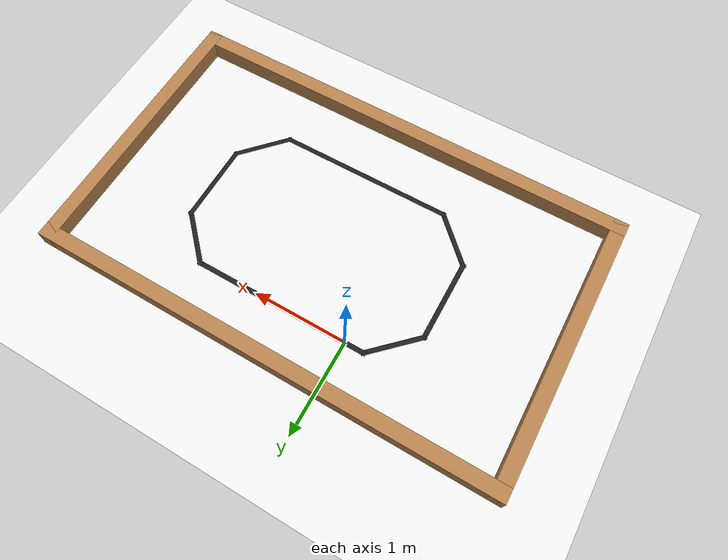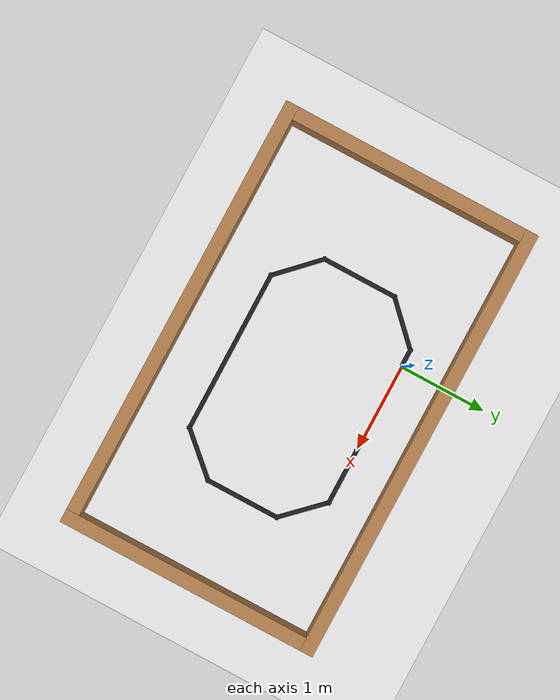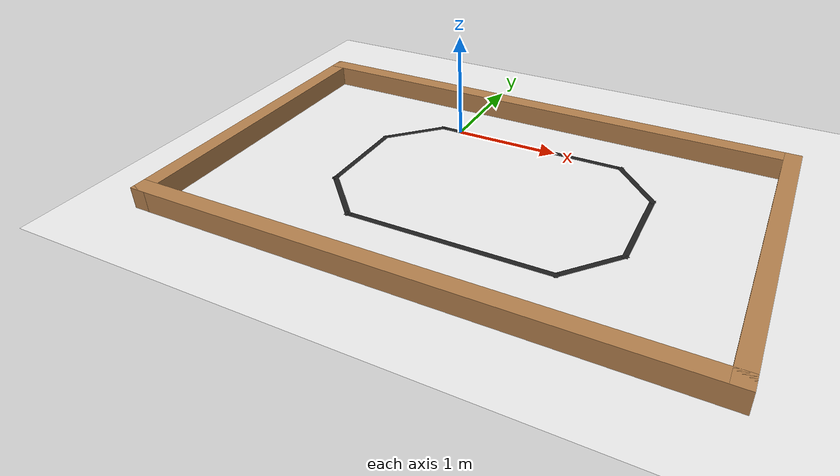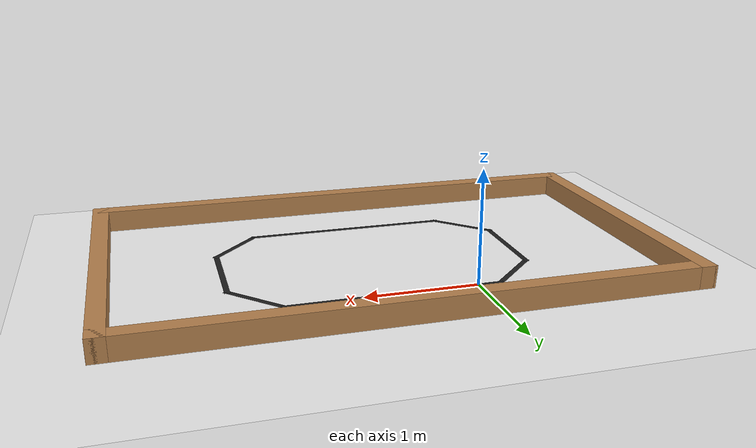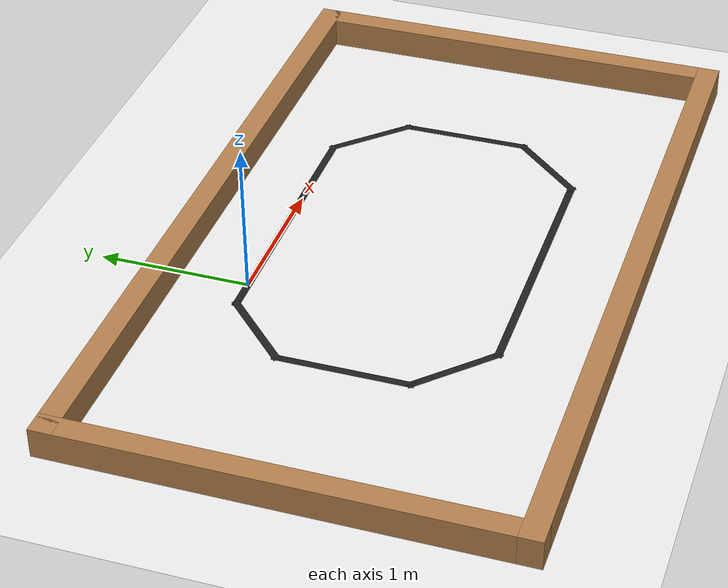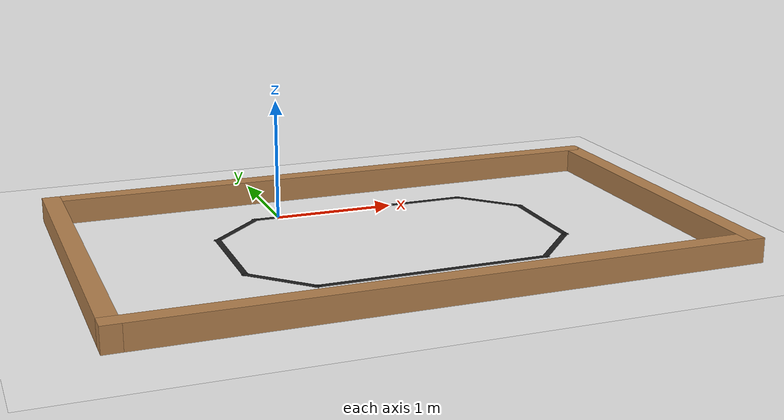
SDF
<sdf version="1.7">
 <world name="default">
  <light name="sun" type="directional">
   <pose>0 0 10 0 -0 0</pose>
   <diffuse>0.8 0.8 0.8 1</diffuse>
   <specular>0.2 0.2 0.2 1</specular>
   <attenuation>
    <range>1000</range>
    <constant>0.9</constant>
    <linear>0.01</linear>
    <quadratic>0.001</quadratic>
   </attenuation>
   <direction>-0.5 0.1 -0.9</direction>
   <spot><inner_angle>0</inner_angle><outer_angle>0</outer_angle><falloff>0</falloff></spot>
  </light>
  <model name="ground_plane">
   <static>1</static>
   <link name="link">
    <collision name="collision">
     <geometry><plane><normal>0 0 1</normal><size>100 100</size></plane></geometry>
     <surface><friction><ode><mu>1</mu><mu2>1</mu2></ode></friction></surface>
    </collision>
    <visual name="visual">
     <cast_shadows>0</cast_shadows>
     <geometry><plane><normal>0 0 1</normal><size>100 100</size></plane></geometry>
     <material>
      <script><uri>file://media/materials/scripts/gazebo.material</uri><name>Gazebo/White</name></script>
     </material>
    </visual>
   </link>
  </model>
  <gravity>0 0 -9.8</gravity>
  <magnetic_field>6e-06 2.3e-05 -4.2e-05</magnetic_field>
  <atmosphere type="adiabatic"/>
  <physics type="ode">
   <max_step_size>0.001</max_step_size>
   <real_time_factor>1</real_time_factor>
   <real_time_update_rate>1000</real_time_update_rate>
  </physics>
  <scene><ambient>0.4 0.4 0.4 1</ambient><background>0.7 0.7 0.7 1</background><shadows>1</shadows></scene>
  <audio><device>default</device></audio>
  <spherical_coordinates>
   <surface_model>EARTH_WGS84</surface_model>
   <latitude_deg>0</latitude_deg>
   <longitude_deg>0</longitude_deg>
   <elevation>0</elevation>
   <heading_deg>0</heading_deg>
  </spherical_coordinates>
  <model name="line_follower_model">
   <pose>0.632 -0.902 0 0 -0 0</pose>
   <link name="Wall_0">
    <collision name="Wall_0_Collision">
     <geometry><box><size>1.9 0.05 0.001</size></box></geometry>
     <pose>0 0 0.0005 0 -0 0</pose>
    </collision>
    <visual name="Wall_0_Visual">
     <pose>0 0 0.0005 0 -0 0</pose>
     <geometry><box><size>1.9 0.05 0.001</size></box></geometry>
     <material>
      <script><uri>file://media/materials/scripts/gazebo.material</uri><name>Gazebo/Black</name></script>
      <ambient>0 0 0 1</ambient>
     </material>
     <meta><layer>0</layer></meta>
    </visual>
    <pose>0.093 0.9045 0 0 -0 0.002703</pose>
   </link>
   <link name="Wall_10">
    <collision name="Wall_10_Collision">
     <geometry><box><size>5 0.15 0.2</size></box></geometry>
     <pose>0 0 0.1 0 -0 0</pose>
    </collision>
    <visual name="Wall_10_Visual">
     <pose>0 0 0.1 0 -0 0</pose>
     <geometry><box><size>5 0.15 0.2</size></box></geometry>
     <material>
      <script><uri>file://media/materials/scripts/gazebo.material</uri><name>Gazebo/Wood</name></script>
      <ambient>1 1 1 1</ambient>
     </material>
     <meta><layer>0</layer></meta>
    </visual>
    <pose>0 1.425 0 0 -0 0</pose>
   </link>
   <link name="Wall_14">
    <collision name="Wall_14_Collision">
     <geometry><box><size>3 0.15 0.2</size></box></geometry>
     <pose>0 0 0.1 0 -0 0</pose>
    </collision>
    <visual name="Wall_14_Visual">
     <pose>0 0 0.1 0 -0 0</pose>
     <geometry><box><size>3 0.15 0.2</size></box></geometry>
     <material>
      <script><uri>file://media/materials/scripts/gazebo.material</uri><name>Gazebo/Wood</name></script>
      <ambient>1 1 1 1</ambient>
     </material>
     <meta><layer>0</layer></meta>
    </visual>
    <pose>2.425 -0 0 0 -0 -1.5708</pose>
   </link>
   <link name="Wall_15">
    <collision name="Wall_15_Collision">
     <geometry><box><size>5 0.15 0.2</size></box></geometry>
     <pose>0 0 0.1 0 -0 0</pose>
    </collision>
    <visual name="Wall_15_Visual">
     <pose>0 0 0.1 0 -0 0</pose>
     <geometry><box><size>5 0.15 0.2</size></box></geometry>
     <material>
      <script><uri>file://media/materials/scripts/gazebo.material</uri><name>Gazebo/Wood</name></script>
      <ambient>1 1 1 1</ambient>
     </material>
     <meta><layer>0</layer></meta>
    </visual>
    <pose>0 -1.425 0 0 -0 3.14159</pose>
   </link>
   <link name="Wall_16">
    <collision name="Wall_16_Collision">
     <geometry><box><size>3 0.15 0.2</size></box></geometry>
     <pose>0 0 0.1 0 -0 0</pose>
    </collision>
    <visual name="Wall_16_Visual">
     <pose>0 0 0.1 0 -0 0</pose>
     <geometry><box><size>3 0.15 0.2</size></box></geometry>
     <material>
      <script><uri>file://media/materials/scripts/gazebo.material</uri><name>Gazebo/Wood</name></script>
      <ambient>1 1 1 1</ambient>
     </material>
     <meta><layer>0</layer></meta>
    </visual>
    <pose>-2.425 -0 0 0 -0 1.5708</pose>
   </link>
   <link name="Wall_2">
    <collision name="Wall_2_Collision">
     <geometry><box><size>0.629912 0.05 0.001</size></box></geometry>
     <pose>0 0 0.0005 0 -0 0</pose>
    </collision>
    <visual name="Wall_2_Visual">
     <pose>0 0 0.0005 0 -0 0</pose>
     <geometry><box><size>0.629912 0.05 0.001</size></box></geometry>
     <material>
      <script><uri>file://media/materials/scripts/gazebo.material</uri><name>Gazebo/Black</name></script>
      <ambient>0 0 0 1</ambient>
     </material>
     <meta><layer>0</layer></meta>
    </visual>
    <pose>1.2195 0.6985 0 0 -0 -0.80247</pose>
   </link>
   <link name="Wall_3">
    <collision name="Wall_3_Collision">
     <geometry><box><size>0.884531 0.05 0.001</size></box></geometry>
     <pose>0 0 0.0005 0 -0 0</pose>
    </collision>
    <visual name="Wall_3_Visual">
     <pose>0 0 0.0005 0 -0 0</pose>
     <geometry><box><size>0.884531 0.05 0.001</size></box></geometry>
     <material>
      <script><uri>file://media/materials/scripts/gazebo.material</uri><name>Gazebo/Black</name></script>
      <ambient>0 0 0 1</ambient>
     </material>
     <meta><layer>0</layer></meta>
    </visual>
    <pose>1.421 0.0725 0 0 -0 -1.5708</pose>
   </link>
   <link name="Wall_4">
    <collision name="Wall_4_Collision">
     <geometry><box><size>0.648007 0.05 0.001</size></box></geometry>
     <pose>0 0 0.0005 0 -0 0</pose>
    </collision>
    <visual name="Wall_4_Visual">
     <pose>0 0 0.0005 0 -0 0</pose>
     <geometry><box><size>0.648007 0.05 0.001</size></box></geometry>
     <material>
      <script><uri>file://media/materials/scripts/gazebo.material</uri><name>Gazebo/Black</name></script>
      <ambient>0 0 0 1</ambient>
     </material>
     <meta><layer>0</layer></meta>
    </visual>
    <pose>1.2195 -0.566 0 0 -0 -2.31007</pose>
   </link>
   <link name="Wall_5">
    <collision name="Wall_5_Collision">
     <geometry><box><size>1.90001 0.05 0.001</size></box></geometry>
     <pose>0 0 0.0005 0 -0 0</pose>
    </collision>
    <visual name="Wall_5_Visual">
     <pose>0 0 0.0005 0 -0 0</pose>
     <geometry><box><size>1.90001 0.05 0.001</size></box></geometry>
     <material>
      <script><uri>file://media/materials/scripts/gazebo.material</uri><name>Gazebo/Black</name></script>
      <ambient>0 0 0 1</ambient>
     </material>
     <meta><layer>0</layer></meta>
    </visual>
    <pose>0.093 -0.7895 0 0 -0 -3.13889</pose>
   </link>
   <link name="Wall_6">
    <collision name="Wall_6_Collision">
     <geometry><box><size>0.650157 0.05 0.001</size></box></geometry>
     <pose>0 0 0.0005 0 -0 0</pose>
    </collision>
    <visual name="Wall_6_Visual">
     <pose>0 0 0.0005 0 -0 0</pose>
     <geometry><box><size>0.650157 0.05 0.001</size></box></geometry>
     <material>
      <script><uri>file://media/materials/scripts/gazebo.material</uri><name>Gazebo/Black</name></script>
      <ambient>0 0 0 1</ambient>
     </material>
     <meta><layer>0</layer></meta>
    </visual>
    <pose>-1.044 -0.58 0 0 -0 2.35619</pose>
   </link>
   <link name="Wall_7">
    <collision name="Wall_7_Collision">
     <geometry><box><size>0.90048 0.05 0.001</size></box></geometry>
     <pose>0 0 0.0005 0 -0 0</pose>
    </collision>
    <visual name="Wall_7_Visual">
     <pose>0 0 0.0005 0 -0 0</pose>
     <geometry><box><size>0.90048 0.05 0.001</size></box></geometry>
     <material>
      <script><uri>file://media/materials/scripts/gazebo.material</uri><name>Gazebo/Black</name></script>
      <ambient>0 0 0 1</ambient>
     </material>
     <meta><layer>0</layer></meta>
    </visual>
    <pose>-1.256 0.057 0 0 -0 1.5708</pose>
   </link>
   <link name="Wall_8">
    <collision name="Wall_8_Collision">
     <geometry><box><size>0.646805 0.05 0.001</size></box></geometry>
     <pose>0 0 0.0005 0 -0 0</pose>
    </collision>
    <visual name="Wall_8_Visual">
     <pose>0 0 0.0005 0 -0 0</pose>
     <geometry><box><size>0.646805 0.05 0.001</size></box></geometry>
     <material>
      <script><uri>file://media/materials/scripts/gazebo.material</uri><name>Gazebo/Black</name></script>
      <ambient>0 0 0 1</ambient>
     </material>
     <meta><layer>0</layer></meta>
    </visual>
    <pose>-1.044 0.692 0 0 -0 0.780659</pose>
   </link>
   <static>1</static>
  </model>
  <light name="user_directional_light_0" type="directional">
   <pose>8.06843 -0.177015 1 0 -0 0</pose>
   <diffuse>0.5 0.5 0.5 1</diffuse>
   <specular>0.1 0.1 0.1 1</specular>
   <direction>0.1 0.1 -0.9</direction>
   <attenuation>
    <range>20</range>
    <constant>0.5</constant>
    <linear>0.01</linear>
    <quadratic>0.001</quadratic>
   </attenuation>
   <spot><inner_angle>0</inner_angle><outer_angle>0</outer_angle><falloff>0</falloff></spot>
  </light>
  <light name="user_directional_light_1" type="directional">
   <pose>-10.7998 19.3066 1 0 -0 0</pose>
   <diffuse>0.5 0.5 0.5 1</diffuse>
   <specular>0.1 0.1 0.1 1</specular>
   <direction>0.1 0.1 -0.9</direction>
   <attenuation>
    <range>20</range>
    <constant>0.5</constant>
    <linear>0.01</linear>
    <quadratic>0.001</quadratic>
   </attenuation>
   <spot><inner_angle>0</inner_angle><outer_angle>0</outer_angle><falloff>0</falloff></spot>
  </light>
  <light name="user_directional_light_2" type="directional">
   <pose>-10.0312 21.2631 1 0 -0 0</pose>
   <diffuse>0.5 0.5 0.5 1</diffuse>
   <specular>0.1 0.1 0.1 1</specular>
   <direction>0.1 0.1 -0.9</direction>
   <attenuation>
    <range>20</range>
    <constant>0.5</constant>
    <linear>0.01</linear>
    <quadratic>0.001</quadratic>
   </attenuation>
   <spot><inner_angle>0</inner_angle><outer_angle>0</outer_angle><falloff>0</falloff></spot>
  </light>
  <light name="user_directional_light_3" type="directional">
   <pose>-9.56479 4.94847 1 0 -0 0</pose>
   <diffuse>0.5 0.5 0.5 1</diffuse>
   <specular>0.1 0.1 0.1 1</specular>
   <direction>0.1 0.1 -0.9</direction>
   <attenuation>
    <range>20</range>
    <constant>0.5</constant>
    <linear>0.01</linear>
    <quadratic>0.001</quadratic>
   </attenuation>
   <spot><inner_angle>0</inner_angle><outer_angle>0</outer_angle><falloff>0</falloff></spot>
  </light>
 </world>
</sdf>
